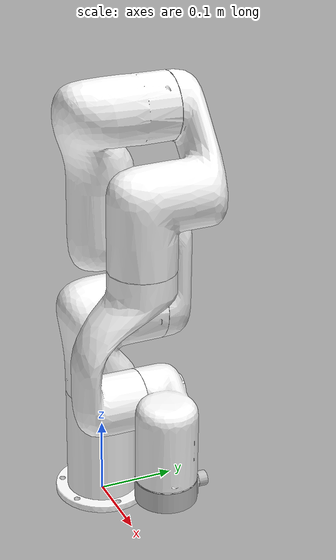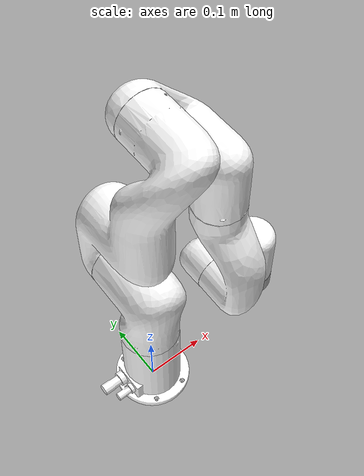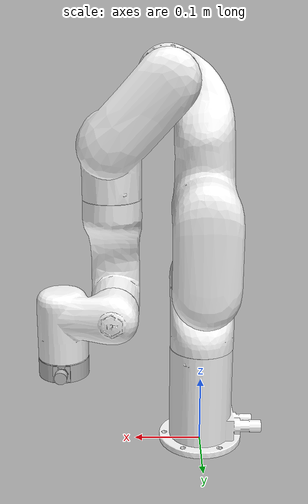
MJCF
<mujoco model="UF_ROBOT">
  <compiler angle="radian"/>

  <asset>
    <mesh name="link_base" file="/home/jtr20003/xarm/xarm_ros2/xarm_description/meshes/xarm6/visual/link_base.stl"/>
    <mesh name="link1" file="/home/jtr20003/xarm/xarm_ros2/xarm_description/meshes/xarm6/visual/link1.stl"/>
    <mesh name="link2" file="/home/jtr20003/xarm/xarm_ros2/xarm_description/meshes/xarm6/visual/link2.stl"/>
    <mesh name="link3" file="/home/jtr20003/xarm/xarm_ros2/xarm_description/meshes/xarm6/visual/link3.stl"/>
    <mesh name="link4" file="/home/jtr20003/xarm/xarm_ros2/xarm_description/meshes/xarm6/visual/link4.stl"/>
    <mesh name="link5" file="/home/jtr20003/xarm/xarm_ros2/xarm_description/meshes/xarm6/visual/link5.stl"/>
    <mesh name="link6" file="/home/jtr20003/xarm/xarm_ros2/xarm_description/meshes/xarm6/visual/link6.stl"/>
    <mesh name="end_tool" file="/home/jtr20003/xarm/xarm_ros2/xarm_description/meshes/end_tool/collision/end_tool.stl"/>
  </asset>

  <worldbody>
    <body name="link_base">
      <inertial pos="0 0 0.09103" quat="0.981065 0.000747228 -0.0021866 -0.193666" mass="2.7" diaginertia="0.00495024 0.00494031 0.00221894"/>
      <geom pos="0 0 0" quat="1 0 0 0" type="mesh" contype="0" conaffinity="0" group="1" rgba="1 1 1 1" density="0" mesh="link_base"/>
      <geom pos="0 0 0" quat="1 0 0 0" type="mesh" rgba="1 1 1 1" mesh="link_base"/>
      <body name="link1" pos="0 0 0.267">
        <inertial pos="0.00022 0.02951 -0.0124" quat="0.976139 -0.216079 -0.00387305 -0.0211673" mass="2.3814" diaginertia="0.00585697 0.00544434 0.00312315"/>
        <joint name="joint1" range="-6.28319 6.28319" actuatorfrcrange="-50 50" armature="0.1" damping="1" frictionloss="1"/>
        <geom quat="1 0 0 0" type="mesh" contype="0" conaffinity="0" group="1" rgba="1 1 1 1" density="0" mesh="link1"/>
        <geom quat="1 0 0 0" type="mesh" rgba="1 1 1 1" mesh="link1"/>
        <body name="link2" quat="0.707105 -0.707108 0 0">
          <inertial pos="0.03881 -0.22783 0.03496" quat="0.635305 0.753023 0.170976 -0.010531" mass="2.2675" diaginertia="0.0294477 0.0281783 0.00383449"/>
          <joint name="joint2" range="-2.059 2.0944" actuatorfrcrange="-50 50" armature="0.1" damping="1" frictionloss="1"/>
          <geom pos="0 0 0" quat="1 0 0 0" type="mesh" contype="0" conaffinity="0" group="1" rgba="1 1 1 1" density="0" mesh="link2"/>
          <geom pos="0 0 0" quat="1 0 0 0" type="mesh" rgba="1 1 1 1" mesh="link2"/>
          <body name="link3" pos="0.0535 -0.2845 0">
            <inertial pos="0.07041 0.11631 0.0107" quat="0.845838 0.425539 -0.293179 0.132369" mass="1.875" diaginertia="0.00714132 0.00699471 0.00196753"/>
            <joint name="joint3" range="-3.927 0.19198" actuatorfrcrange="-32 32" armature="0.1" damping="1" frictionloss="1"/>
            <geom pos="0 0 0" quat="1 0 0 0" type="mesh" contype="0" conaffinity="0" group="1" rgba="1 1 1 1" density="0" mesh="link3"/>
            <geom pos="0 0 0" quat="1 0 0 0" type="mesh" rgba="1 1 1 1" mesh="link3"/>
            <body name="link4" pos="0.0775 0.3425 0" quat="0.707105 -0.707108 0 0">
              <inertial pos="-0.00018 0.01798 -0.02291" quat="0.99929 -0.0369702 0.00179429 -0.00701173" mass="1.3192" diaginertia="0.00489614 0.00447403 0.00132609"/>
              <joint name="joint4" range="-6.28319 6.28319" actuatorfrcrange="-32 32" armature="0.1" damping="1" frictionloss="1"/>
              <geom type="mesh" contype="0" conaffinity="0" group="1" rgba="1 1 1 1" density="0" mesh="link4"/>
              <geom type="mesh" rgba="1 1 1 1" mesh="link4"/>
              <body name="link5" quat="0.707105 0.707108 0 0">
                <inertial pos="0.0651 0.03096 0.00315" quat="-0.223008 0.771309 0.16027 0.574163" mass="1.33854" diaginertia="0.00241824 0.00213367 0.00108731"/>
                <joint name="joint5" range="-1.69297 3.14159" actuatorfrcrange="-32 32" armature="0.1" damping="1" frictionloss="1"/>
                <geom pos="0 0 0" quat="1 0 0 0" type="mesh" contype="0" conaffinity="0" group="1" rgba="1 1 1 1" density="0" mesh="link5"/>
                <geom pos="0 0 0" quat="1 0 0 0" type="mesh" rgba="1 1 1 1" mesh="link5"/>
                <body name="link6" pos="0.076 0.097 0" quat="0.707105 -0.707108 0 0">
                  <inertial pos="0 -0.00677 -0.01098" quat="0.487612 0.512088 -0.512088 0.487612" mass="0.17" diaginertia="0.000132176 9.3e-05 5.85236e-05"/>
                  <joint name="joint6" range="-6.28319 6.28319" actuatorfrcrange="-20 20" armature="0.1" damping="1" frictionloss="1"/>
                  <geom quat="1 0 0 0" type="mesh" contype="0" conaffinity="0" group="1" rgba="0.753 0.753 0.753 1" density="0" mesh="link6"/>
                  <geom quat="1 0 0 0" type="mesh" rgba="0.753 0.753 0.753 1" mesh="end_tool"/>
                  <body name="link_eef"/>
                </body>
              </body>
            </body>
          </body>
        </body>
      </body>
    </body>
  </worldbody>

  <actuator>
    <general name="act1" joint="joint1" ctrlrange="-6.28319 6.28319" ctrllimited="true" biastype="affine" gainprm="2000" biasprm="0 -2000 -200"/>
    <general name="act2" joint="joint2" ctrlrange="-2.059 2.0944" ctrllimited="true" biastype="affine" gainprm="2000" biasprm="0 -2000 -200"/>
    <general name="act3" joint="joint3" ctrlrange="-3.927 0.19198" ctrllimited="true" biastype="affine" gainprm="2000" biasprm="0 -2000 -200"/>
    <general name="act4" joint="joint4" ctrlrange="-6.28319 6.28319" ctrllimited="true" biastype="affine" gainprm="2000" biasprm="0 -2000 -200"/>
    <general name="act5" joint="joint5" ctrlrange="-1.69297 3.14159" ctrllimited="true" biastype="affine" gainprm="2000" biasprm="0 -2000 -200"/>
    <general name="act6" joint="joint6" ctrlrange="-6.28319 6.28319" ctrllimited="true" biastype="affine" gainprm="2000" biasprm="0 -2000 -200"/>
  </actuator>
</mujoco>
